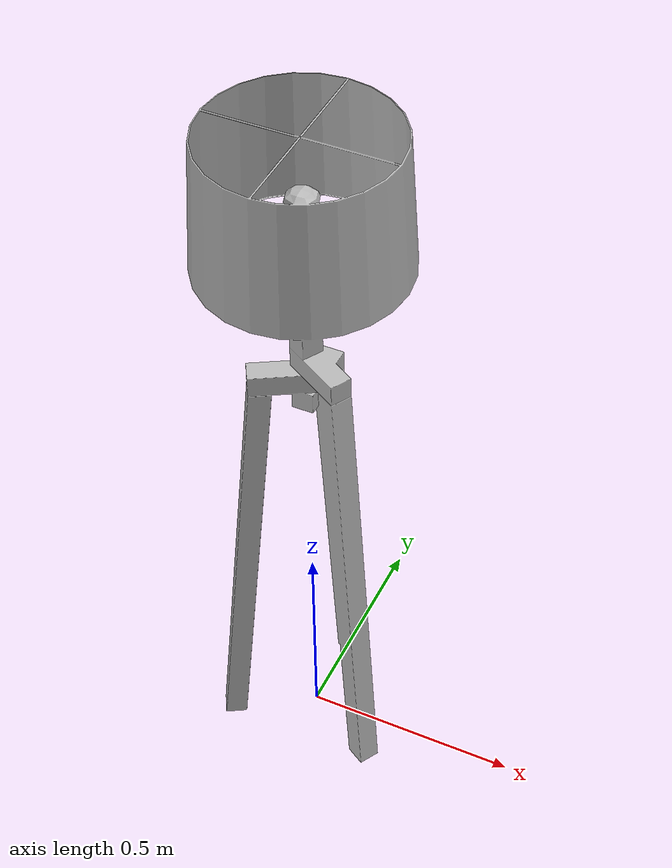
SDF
<?xml version='1.0'?>
<sdf version='1.4'>
  <model name='521'>
    <pose>0 0 0 0 0 0</pose>
    <static>true</static>
    <link name='link'>
      <collision name='collision'>
        <pose>0 0 0 0 0 0</pose>
        <geometry>
          <box>
            <size>0.45027 0.45027 2</size>
          </box>
        </geometry>
      </collision>
      <visual name='visual'>
        <pose>0 0 0 0 0 0</pose>
        <geometry>
          <mesh><uri>model://521/521.dae</uri></mesh>
        </geometry>
      </visual>
    </link>
  </model>
</sdf>
